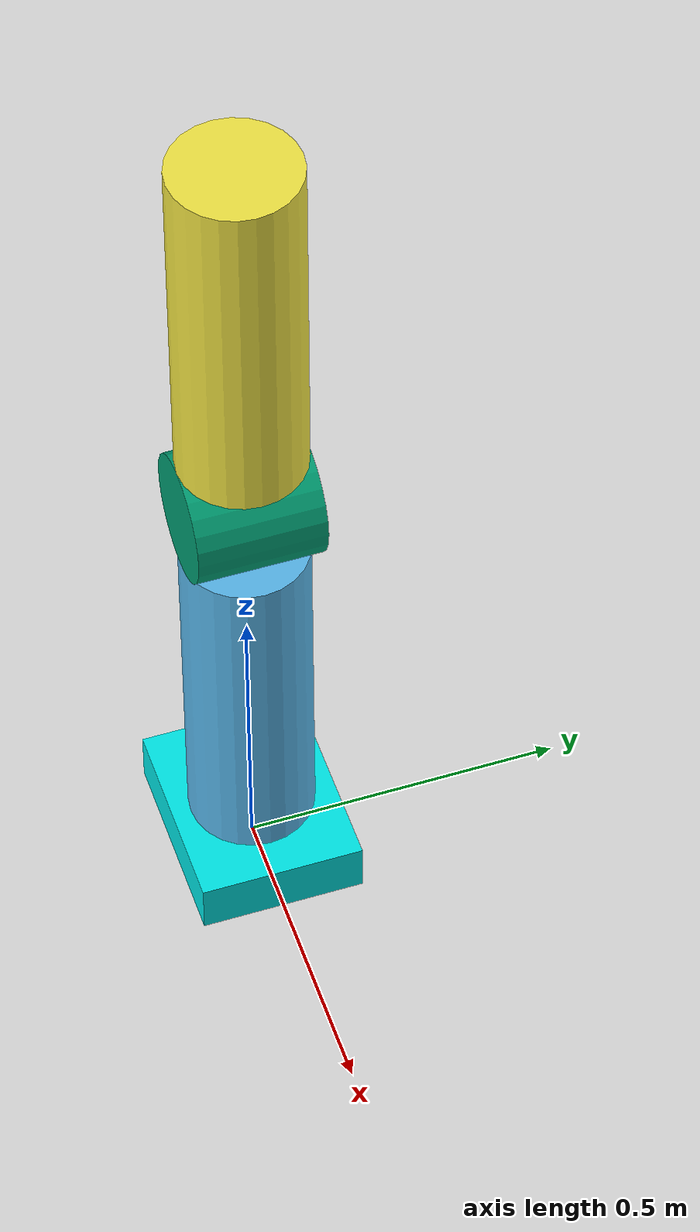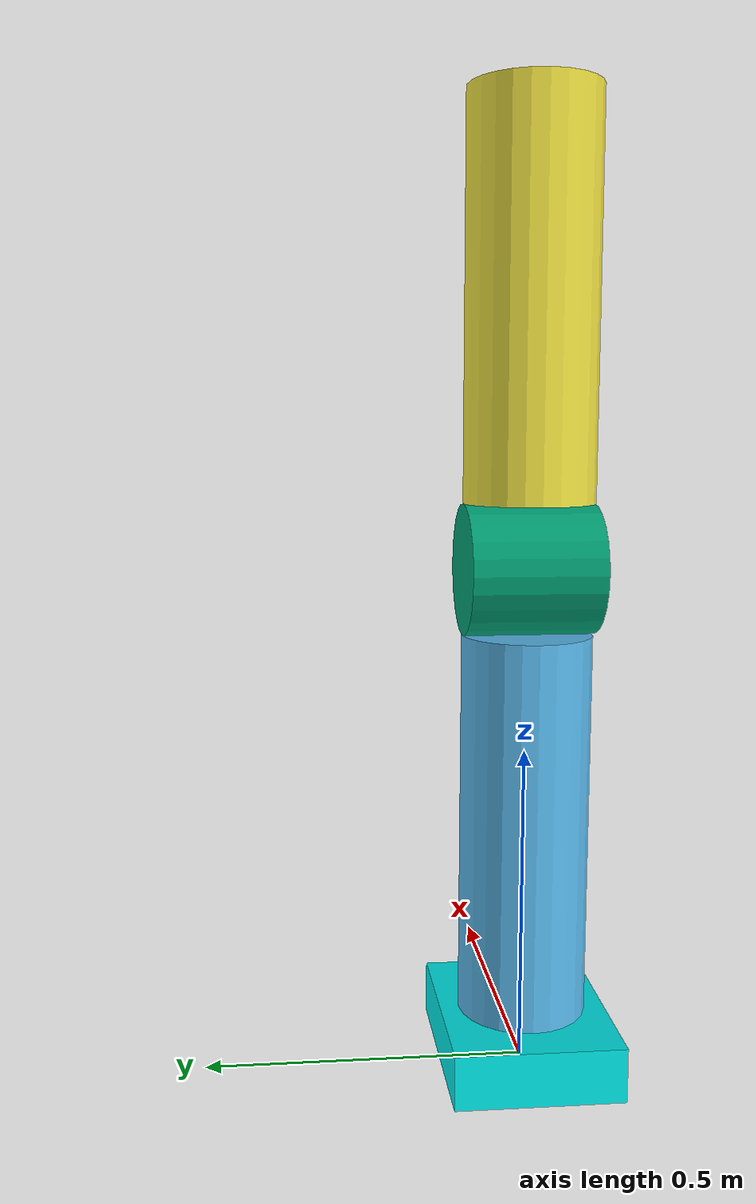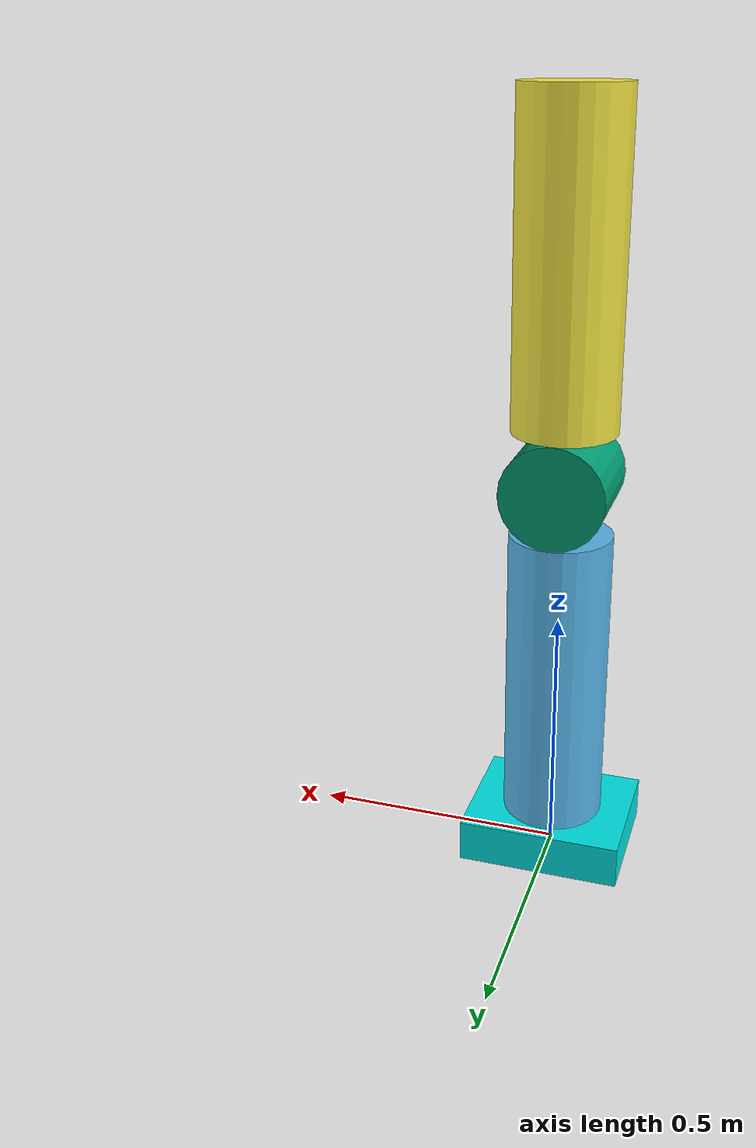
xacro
<robot name="my_robot" xmlns:xacro="http://www.ros.org/wiki/xacro">

  <!-- * * * Link Definitions * * * -->

  <link name="base_link">
    <visual>
        <origin xyz="0 0 0.0425" rpy="0 0 0"/>
      <geometry>
        <box size="0.32 0.26 0.085"/>
      </geometry>
      <material name="Cyan1">
            <color rgba="0 0.9 0.9 1.0"/>
        </material>
    </visual>

  </link>

 <link name="link_01">
    <visual>
      <geometry>
        <cylinder length="0.6" radius="0.1"/>
      </geometry>
    </visual>
  </link>

<joint name="base_to_right_leg" type="revolute">
    <parent link="base_link"/>
    <child link="link_01"/>
  <origin xyz="0 0 0.385 " rpy="0 0 0" />
  <axis xyz="0 0 1"/>
  <limit effort="30" velocity="1.0" lower="-0.45" upper="0.45" />
  </joint>

<link name="link_02">
    <visual>
      <geometry>
        <cylinder length="0.2" radius="0.1"/>
      </geometry>
    </visual>
  </link>

<joint name="joint02" type="fixed">
    <parent link="link_01"/>
    <child link="link_02"/>
  <origin xyz="0 0 0.4 " rpy="1.57 0 0" />
  <axis xyz="1 0 0"/>
  <limit effort="30" velocity="1.0" lower="-0.45" upper="0.45" />
  </joint>

<link name="link_03">
    <visual>
      <origin rpy="1.57 0 0" xyz="0 0.4 0"/>
      <geometry>
        <cylinder length="0.6" radius="0.1"/>
      </geometry>
    </visual>
  </link>

<joint name="joint03" type="revolute">
    <parent link="link_02"/>
    <child link="link_03"/>
  <origin xyz="0 0 0" rpy="0 0 0" />
  <axis xyz="0 0 1"/>
  <limit effort="30" velocity="1.0" lower="-3.14" upper="3.14" />
  </joint>

</robot>
